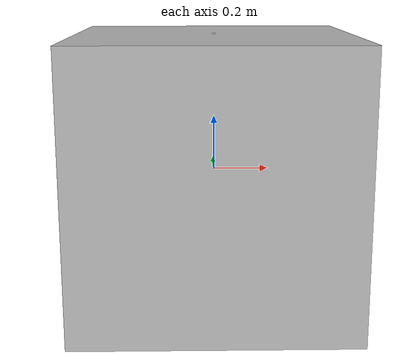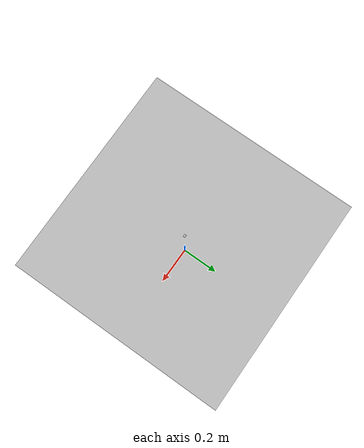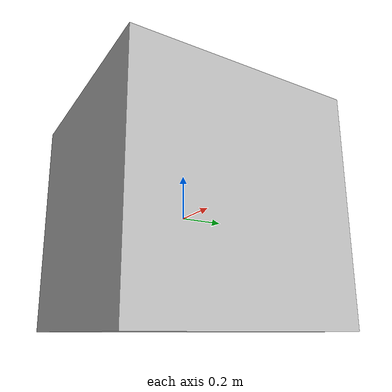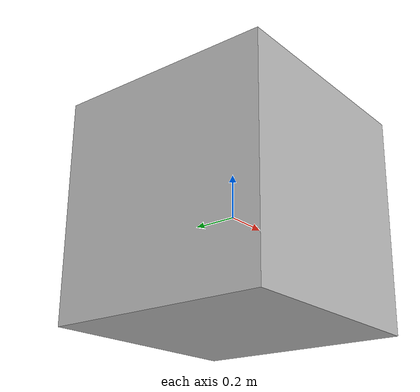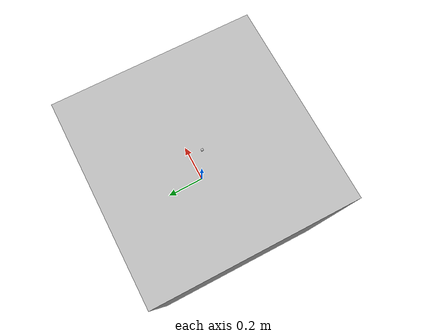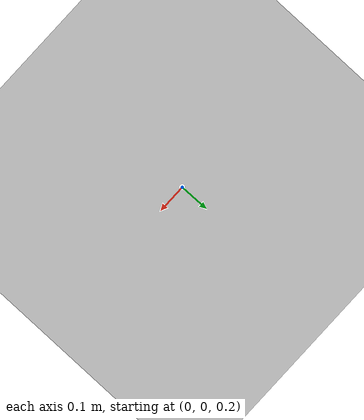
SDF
<?xml version='1.0'?>
<sdf version='1.4'>
  <model name='station_cable'>
    <self_collide>false</self_collide>

    <link name="station_link">
      <self_collide>true</self_collide>
      <pose>0 0 0 0 0 0</pose>
      <inertial>
        <mass>100</mass>
      </inertial>
      <collision name="station_link_collision">
        <geometry>
          <box>
            <size>1 1 1</size>
          </box>
        </geometry>
        <surface>
          <contact>true</contact>
        </surface>
      </collision>
      <visual name='station_link_visual'>
        <geometry>
          <box>
            <size>1 1 1</size>
          </box>
        </geometry>
      </visual>
    </link>

    <link name="cable_link">
      <pose>0 0 0.5 0 0 0</pose>
      <inertial>
        <mass>0</mass>
      </inertial>
      <visual name='cable_link_visual'>
        <geometry>
          <box>
            <size>0.01 0.01 0.01</size>
          </box>
        </geometry>
      </visual>
    </link>

    <joint name="station_cable_joint" type="universal">
      <parent>station_link</parent>
      <child>cable_link</child>
      <pose>0 1 0 0 0 0</pose>
    </joint>

  </model>
</sdf>
